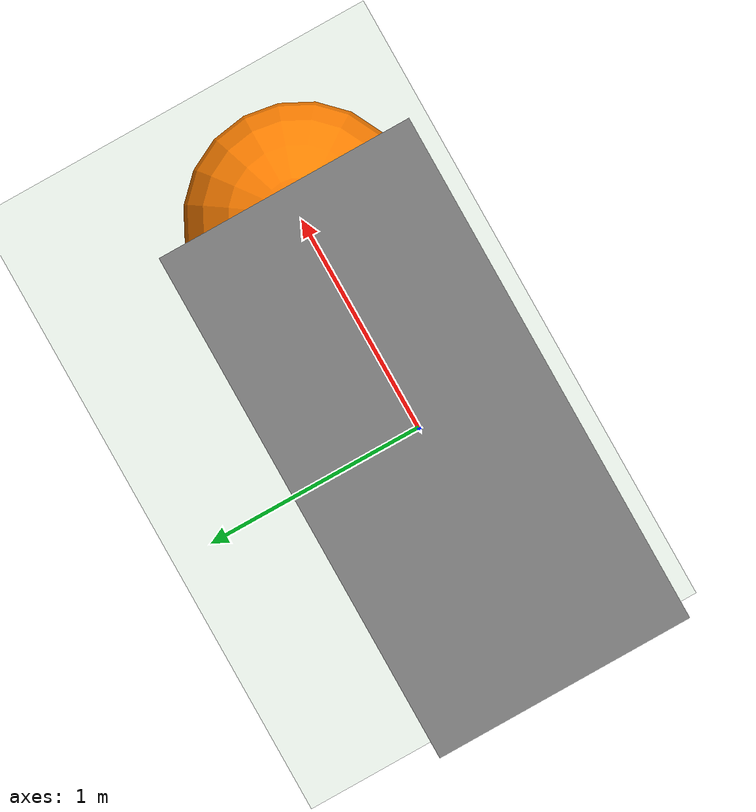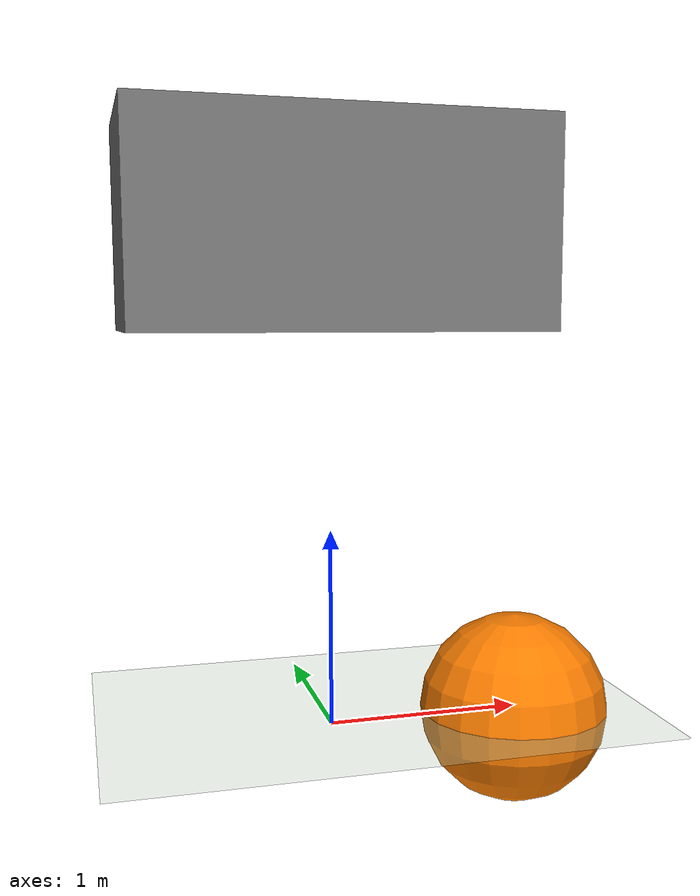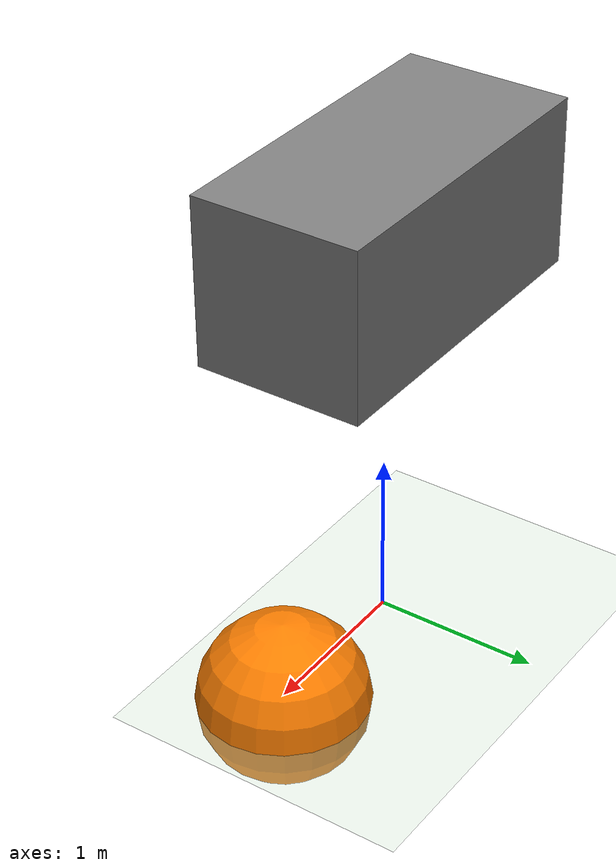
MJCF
<mujoco model="cellrobot(v1.0)">
    <compiler angle="radian" coordinate="local" meshdir="meshes" strippath="false" texturedir="textures"/>
    <option gravity="0 0 -9.81" integrator="RK4" timestep="0.001"/>

    <size nconmax="250" njmax="795" nstack="631875"/>

    <default>
        <geom conaffinity="1" condim="3" friction="1 0.5 0.5" margin="0.001"/>
        <mesh scale="1 1 1"/>
        <joint armature=".01" damping="5 " limited="true"/>

        <default class="detacher">
            <geom conaffinity="1" condim="3" friction="1 0.5 0.5" margin="0.001" pos="0 0 0" rgba="0.93 0.71 0.13 1"
                  type="mesh"/>
        </default>
        <default class="cell">
            <geom conaffinity="1" condim="3" friction="1 0.5 0.5" margin="0.001" type="mesh"/>

        </default>

    </default>
    <asset>

        <texture builtin="checker" height="100" name="floor_tex" rgb1=".2 .3 .4" rgb2=".1 .2 .3" type="2d" width="100"/>
        <texture builtin="checker" height="100" name="texplane" rgb1="0 0 0" rgb2="0.8 0.8 0.8" type="2d" width="100"/>
        <texture file="block.png" gridlayout=".U..LFRB.D.." gridsize="3 4" name="texture:object" type="cube"/>

        <material name="floor_mat" reflectance="0.5" shininess="0.8" specular="0.7" texrepeat="10 10"
                  texture="floor_tex"/>
        <material name="MatPlane" reflectance="0.5" shininess="1" specular="1" texrepeat="30 30" texture="texplane"/>
        <material name="material:object" reflectance="0" shininess="0" specular="1" texture="texture:object"/>
    </asset>

    <visual>
        <map fogend="3" fogstart="1.5"/>
        <quality shadowsize="20480"/>
    </visual>

    <worldbody>

        <light cutoff="100" diffuse="1 1 1" dir="-0 0 -1.3" directional="true" exponent="1" pos="0 0 1.3"
               specular=".1 .1 .1"/>

        <camera axisangle="2 2 -2 1" mode="fixed" name="main1" pos="2 2 2" target="torso"/>

        <geom conaffinity="1" condim="3" material="MatPlane" name="floor" pos="0 0 0" rgba="0.8 0.9 0.8 1"
              size="15 15 15" type="plane"/>

        <site name="target1" pos="1 0 0" rgba="1 0.5 0 1" size="0.5 " type="sphere"/>
        <site name="target2" pos="0 0 2.5" rgba="1 0 0 1" size="0.1 " type="sphere"/>

             <body   name="torso" pos="0  0  2.5 ">
                <joint axis="0 0 1" limited="false" name="joint:cell0" pos="0 0 0"/>
                <geom name="beam" pos="0   0 0" size="1  0.5  0.5" type="box"   mass=" 100"/>
                <site name="cell0" pos="0 0 0 " size="0.001 0.001 0.001"/>

            </body>

    </worldbody>

    <actuator>

        <motor    ctrllimited="true" ctrlrange="-1.0 1.0" gear="1" joint="joint:cell0"/>
    </actuator>
    <sensor>

        <torque name="cell0_toq" site="cell0"/>

    </sensor>
</mujoco>
